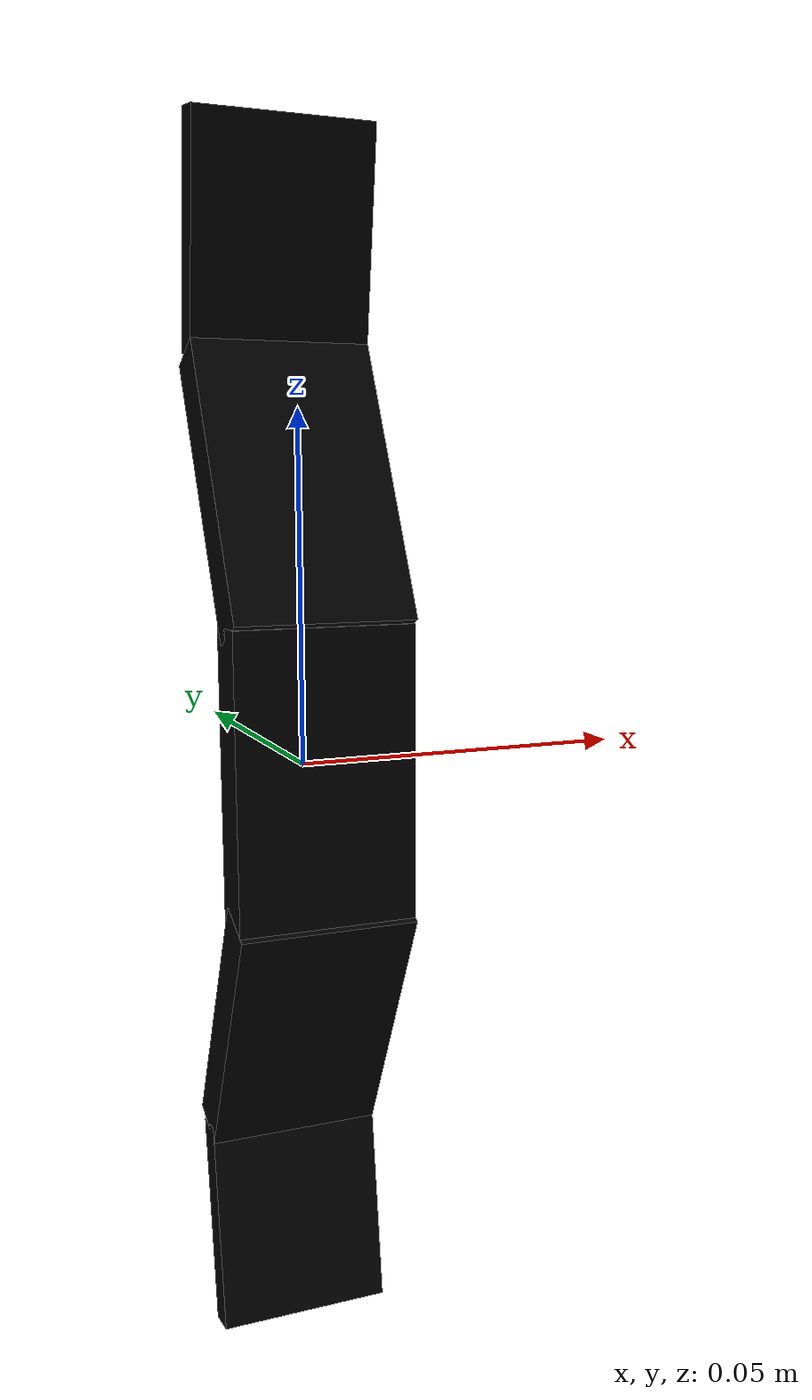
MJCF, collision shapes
<?xml version="1.0" ?>
<mujoco model="model">
    <compiler angle="radian"/>
    <asset>
        <mesh file="visuals/CabinetHandle030.obj" name="mesh"/>
        <texture file="visuals/T_BC001.png" name="tex" type="2d"/>
        <material name="mat" rgba="1 1 1 1.0" texture="tex" shininess="0.10000002384185791" specular="0.33333333333333337"/>
    </asset>
    <default>
        <default class="visual">
            <geom conaffinity="0" contype="0" group="1" type="mesh"/>
        </default>
        <default class="collision">
            <geom group="0" rgba="0 0 0 0"/>
        </default>
        <default class="spawn">
            <geom group="0" rgba="0 0 0 0" contype="0" conaffinity="0"/>
            <site group="0" rgba="0 0 0 0"/>
        </default>
    </default>
    <worldbody>
        <body>
            <body name="object">
                <geom mesh="mesh" type="mesh" solimp="0.998 0.998 0.001" solref="0.001 1" density="100" friction="0.95 0.3 0.1" class="visual" material="mat"/>
                <geom class="collision" type="box" pos="8.940696516468449e-10 -0.007082347758114338 -0.0004003117501270026" size="0.013027895241975784 0.0038087209686636925 0.021216489374637604" quat="1.0 0.0 0.0 0.0"/>
                <geom class="collision" type="box" pos="8.940696516468449e-10 0.0011402963427826762 -0.03923497349023819" size="0.013027895241975784 0.0038087209686636925 0.021216489374637604" quat="0.9737184047698975 0.22775524854660034 1.786026210184081e-17 -2.66923801083895e-18"/>
                <geom class="collision" type="box" pos="8.940696516468449e-10 0.007703626528382301 -0.07363760471343994" size="0.013027895241975784 0.002470612060278654 0.015998290851712227" quat="0.9975340962409973 -0.07018361240625381 -4.7623160218674605e-17 7.117329169744105e-18" name="handle_connector"/>
                <geom class="collision" type="box" pos="8.940696516468449e-10 0.0010489961132407188 0.0387575663626194" size="0.013027895241975784 0.0038087209686636925 0.021216489374637604" quat="4.2174252712356974e-07 9.864666594694427e-08 -0.22775524854660034 -0.9737184047698975"/>
                <geom class="collision" type="box" pos="2.544043642416227e-09 0.0076123252511024475 0.07316020131111145" size="0.013027895241975784 0.002470612060278654 0.015998290851712227" quat="4.32057731813984e-07 -3.0398329187164563e-08 0.07018361240625381 -0.9975340962409973"/>
            </body>
        </body>
    </worldbody>
    <actuator/>
</mujoco>
